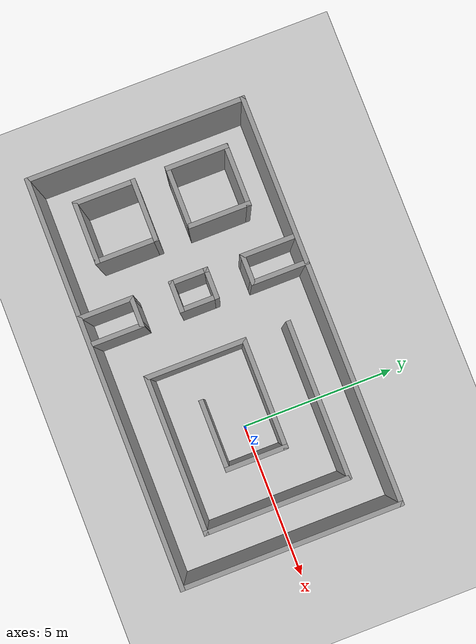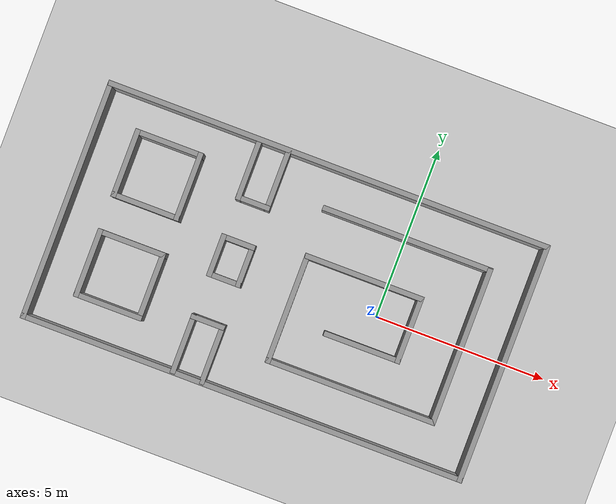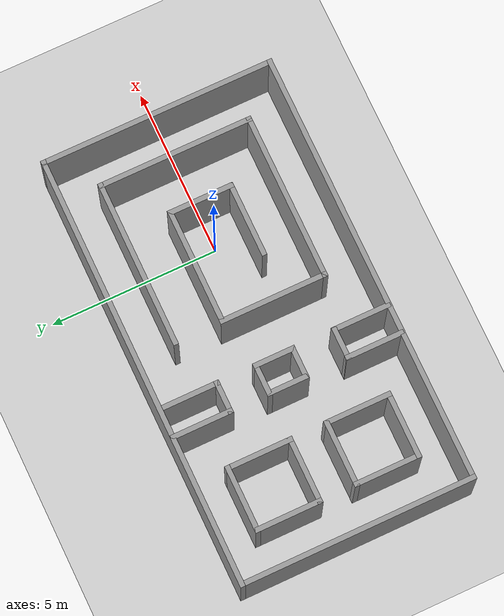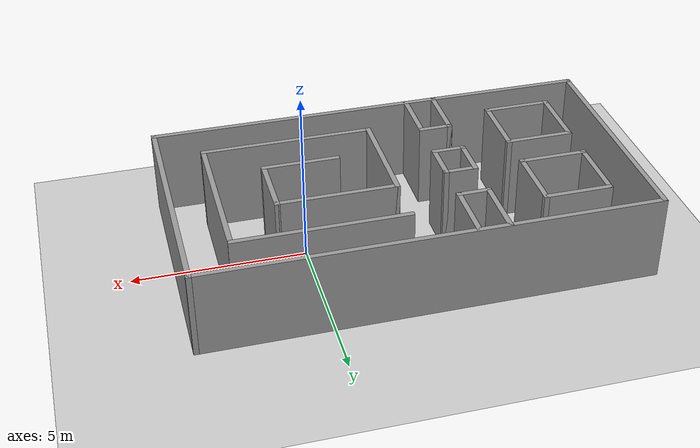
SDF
<sdf version="1.6">
 <world name="default">
  <light name="sun" type="directional">
   <pose>0 0 10 0 -0 0</pose>
   <diffuse>0.8 0.8 0.8 1</diffuse>
   <specular>0.1 0.1 0.1 1</specular>
   <attenuation>
    <range>1000</range>
    <constant>0.9</constant>
    <linear>0.01</linear>
    <quadratic>0.001</quadratic>
   </attenuation>
   <direction>-0.5 0.5 -1</direction>
  </light>
  <model name="ground_plane">
   <static>1</static>
   <link name="link">
    <collision name="collision">
     <geometry><plane><normal>0 0 1</normal><size>100 100</size></plane></geometry>
     <surface><friction><ode><mu>100</mu><mu2>50</mu2></ode></friction></surface>
    </collision>
    <visual name="visual">
     <cast_shadows>0</cast_shadows>
     <geometry><plane><normal>0 0 1</normal><size>100 100</size></plane></geometry>
     <material>
      <script><uri>file://media/materials/scripts/gazebo.material</uri><name>Gazebo/Grey</name></script>
     </material>
    </visual>
   </link>
  </model>
  <gravity>0 0 -9.8</gravity>
  <magnetic_field>6e-06 2.3e-05 -4.2e-05</magnetic_field>
  <atmosphere type="adiabatic"/>
  <physics name="default_physics" default="0" type="ode">
   <max_step_size>0.001</max_step_size>
   <real_time_factor>1</real_time_factor>
   <real_time_update_rate>1000</real_time_update_rate>
  </physics>
  <scene><ambient>0.4 0.4 0.4 1</ambient><background>0.7 0.7 0.7 1</background><shadows>1</shadows></scene>
  <spherical_coordinates>
   <surface_model>EARTH_WGS84</surface_model>
   <latitude_deg>0</latitude_deg>
   <longitude_deg>0</longitude_deg>
   <elevation>0</elevation>
   <heading_deg>0</heading_deg>
  </spherical_coordinates>
  <model name="MazeMap_0">
   <pose>-2.73843 0.027634 0 0 -0 0</pose>
   <link name="Wall_10">
    <collision name="Wall_10_Collision">
     <geometry><box><size>2 0.15 2.5</size></box></geometry>
     <pose>0 0 1.25 0 -0 0</pose>
    </collision>
    <visual name="Wall_10_Visual">
     <pose>0 0 1.25 0 -0 0</pose>
     <geometry><box><size>2 0.15 2.5</size></box></geometry>
     <material>
      <script><uri>file://media/materials/scripts/gazebo.material</uri><name>Gazebo/Grey</name></script>
      <ambient>1 1 1 1</ambient>
     </material>
    </visual>
    <pose>-3.41573 1.51218 0 0 -0 1.5708</pose>
   </link>
   <link name="Wall_11">
    <collision name="Wall_11_Collision">
     <geometry><box><size>2 0.15 2.5</size></box></geometry>
     <pose>0 0 1.25 0 -0 0</pose>
    </collision>
    <visual name="Wall_11_Visual">
     <pose>0 0 1.25 0 -0 0</pose>
     <geometry><box><size>2 0.15 2.5</size></box></geometry>
     <material>
      <script><uri>file://media/materials/scripts/gazebo.material</uri><name>Gazebo/Grey</name></script>
      <ambient>1 1 1 1</ambient>
     </material>
    </visual>
    <pose>-4.34073 2.43718 0 0 -0 3.14159</pose>
   </link>
   <link name="Wall_13">
    <collision name="Wall_13_Collision">
     <geometry><box><size>2 0.15 2.5</size></box></geometry>
     <pose>0 0 1.25 0 -0 0</pose>
    </collision>
    <visual name="Wall_13_Visual">
     <pose>0 0 1.25 0 -0 0</pose>
     <geometry><box><size>2 0.15 2.5</size></box></geometry>
     <material>
      <script><uri>file://media/materials/scripts/gazebo.material</uri><name>Gazebo/Grey</name></script>
      <ambient>1 1 1 1</ambient>
     </material>
    </visual>
    <pose>-5.26573 -1.4254 0 0 0 -1.5708</pose>
   </link>
   <link name="Wall_14">
    <collision name="Wall_14_Collision">
     <geometry><box><size>2 0.15 2.5</size></box></geometry>
     <pose>0 0 1.25 0 -0 0</pose>
    </collision>
    <visual name="Wall_14_Visual">
     <pose>0 0 1.25 0 -0 0</pose>
     <geometry><box><size>2 0.15 2.5</size></box></geometry>
     <material>
      <script><uri>file://media/materials/scripts/gazebo.material</uri><name>Gazebo/Grey</name></script>
      <ambient>1 1 1 1</ambient>
     </material>
    </visual>
    <pose>-4.34073 -2.3504 0 0 -0 0</pose>
   </link>
   <link name="Wall_15">
    <collision name="Wall_15_Collision">
     <geometry><box><size>2 0.15 2.5</size></box></geometry>
     <pose>0 0 1.25 0 -0 0</pose>
    </collision>
    <visual name="Wall_15_Visual">
     <pose>0 0 1.25 0 -0 0</pose>
     <geometry><box><size>2 0.15 2.5</size></box></geometry>
     <material>
      <script><uri>file://media/materials/scripts/gazebo.material</uri><name>Gazebo/Grey</name></script>
      <ambient>1 1 1 1</ambient>
     </material>
    </visual>
    <pose>-3.41573 -1.4254 0 0 -0 1.5708</pose>
   </link>
   <link name="Wall_16">
    <collision name="Wall_16_Collision">
     <geometry><box><size>2 0.15 2.5</size></box></geometry>
     <pose>0 0 1.25 0 -0 0</pose>
    </collision>
    <visual name="Wall_16_Visual">
     <pose>0 0 1.25 0 -0 0</pose>
     <geometry><box><size>2 0.15 2.5</size></box></geometry>
     <material>
      <script><uri>file://media/materials/scripts/gazebo.material</uri><name>Gazebo/Grey</name></script>
      <ambient>1 1 1 1</ambient>
     </material>
    </visual>
    <pose>-4.34073 -0.500403 0 0 -0 3.14159</pose>
   </link>
   <link name="Wall_18">
    <collision name="Wall_18_Collision">
     <geometry><box><size>1.83649 0.15 2.5</size></box></geometry>
     <pose>0 0 1.25 0 -0 0</pose>
    </collision>
    <visual name="Wall_18_Visual">
     <pose>0 0 1.25 0 -0 0</pose>
     <geometry><box><size>1.83649 0.15 2.5</size></box></geometry>
     <material>
      <script><uri>file://media/materials/scripts/gazebo.material</uri><name>Gazebo/Grey</name></script>
      <ambient>1 1 1 1</ambient>
     </material>
    </visual>
    <pose>-2.02744 2.56542 0 0 0 -1.5708</pose>
   </link>
   <link name="Wall_19">
    <collision name="Wall_19_Collision">
     <geometry><box><size>1 0.15 2.5</size></box></geometry>
     <pose>0 0 1.25 0 -0 0</pose>
    </collision>
    <visual name="Wall_19_Visual">
     <pose>0 0 1.25 0 -0 0</pose>
     <geometry><box><size>1 0.15 2.5</size></box></geometry>
     <material>
      <script><uri>file://media/materials/scripts/gazebo.material</uri><name>Gazebo/Grey</name></script>
      <ambient>1 1 1 1</ambient>
     </material>
    </visual>
    <pose>-1.60244 1.72218 0 0 -0 0</pose>
   </link>
   <link name="Wall_20">
    <collision name="Wall_20_Collision">
     <geometry><box><size>1.83649 0.15 2.5</size></box></geometry>
     <pose>0 0 1.25 0 -0 0</pose>
    </collision>
    <visual name="Wall_20_Visual">
     <pose>0 0 1.25 0 -0 0</pose>
     <geometry><box><size>1.83649 0.15 2.5</size></box></geometry>
     <material>
      <script><uri>file://media/materials/scripts/gazebo.material</uri><name>Gazebo/Grey</name></script>
      <ambient>1 1 1 1</ambient>
     </material>
    </visual>
    <pose>-1.17744 2.56542 0 0 -0 1.5708</pose>
   </link>
   <link name="Wall_22">
    <collision name="Wall_22_Collision">
     <geometry><box><size>5 0.15 2.5</size></box></geometry>
     <pose>0 0 1.25 0 -0 0</pose>
    </collision>
    <visual name="Wall_22_Visual">
     <pose>0 0 1.25 0 -0 0</pose>
     <geometry><box><size>5 0.15 2.5</size></box></geometry>
     <material>
      <script><uri>file://media/materials/scripts/gazebo.material</uri><name>Gazebo/Grey</name></script>
      <ambient>1 1 1 1</ambient>
     </material>
    </visual>
    <pose>2.74801 2.27527 0 0 -0 0</pose>
   </link>
   <link name="Wall_23">
    <collision name="Wall_23_Collision">
     <geometry><box><size>4.60678 0.15 2.5</size></box></geometry>
     <pose>0 0 1.25 0 -0 0</pose>
    </collision>
    <visual name="Wall_23_Visual">
     <pose>0 0 1.25 0 -0 0</pose>
     <geometry><box><size>4.60678 0.15 2.5</size></box></geometry>
     <material>
      <script><uri>file://media/materials/scripts/gazebo.material</uri><name>Gazebo/Grey</name></script>
      <ambient>1 1 1 1</ambient>
     </material>
    </visual>
    <pose>5.17301 0.02375 0 0 0 -1.5708</pose>
   </link>
   <link name="Wall_24">
    <collision name="Wall_24_Collision">
     <geometry><box><size>5 0.15 2.5</size></box></geometry>
     <pose>0 0 1.25 0 -0 0</pose>
    </collision>
    <visual name="Wall_24_Visual">
     <pose>0 0 1.25 0 -0 0</pose>
     <geometry><box><size>5 0.15 2.5</size></box></geometry>
     <material>
      <script><uri>file://media/materials/scripts/gazebo.material</uri><name>Gazebo/Grey</name></script>
      <ambient>1 1 1 1</ambient>
     </material>
    </visual>
    <pose>2.74801 -2.20464 0 0 -0 3.14159</pose>
   </link>
   <link name="Wall_25">
    <collision name="Wall_25_Collision">
     <geometry><box><size>3.22243 0.15 2.5</size></box></geometry>
     <pose>0 0 1.25 0 -0 0</pose>
    </collision>
    <visual name="Wall_25_Visual">
     <pose>0 0 1.25 0 -0 0</pose>
     <geometry><box><size>3.22243 0.15 2.5</size></box></geometry>
     <material>
      <script><uri>file://media/materials/scripts/gazebo.material</uri><name>Gazebo/Grey</name></script>
      <ambient>1 1 1 1</ambient>
     </material>
    </visual>
    <pose>0.323006 -0.668424 0 0 -0 1.5708</pose>
   </link>
   <link name="Wall_27">
    <collision name="Wall_27_Collision">
     <geometry><box><size>3.5 0.15 2.5</size></box></geometry>
     <pose>0 0 1.25 0 -0 0</pose>
    </collision>
    <visual name="Wall_27_Visual">
     <pose>0 0 1.25 0 -0 0</pose>
     <geometry><box><size>3.5 0.15 2.5</size></box></geometry>
     <material>
      <script><uri>file://media/materials/scripts/gazebo.material</uri><name>Gazebo/Grey</name></script>
      <ambient>1 1 1 1</ambient>
     </material>
    </visual>
    <pose>1.99801 0.867793 0 0 -0 0</pose>
   </link>
   <link name="Wall_28">
    <collision name="Wall_28_Collision">
     <geometry><box><size>1.97243 0.15 2.5</size></box></geometry>
     <pose>0 0 1.25 0 -0 0</pose>
    </collision>
    <visual name="Wall_28_Visual">
     <pose>0 0 1.25 0 -0 0</pose>
     <geometry><box><size>1.97243 0.15 2.5</size></box></geometry>
     <material>
      <script><uri>file://media/materials/scripts/gazebo.material</uri><name>Gazebo/Grey</name></script>
      <ambient>1 1 1 1</ambient>
     </material>
    </visual>
    <pose>3.67301 -0.043424 0 0 0 -1.5708</pose>
   </link>
   <link name="Wall_29">
    <collision name="Wall_29_Collision">
     <geometry><box><size>2.25 0.15 2.5</size></box></geometry>
     <pose>0 0 1.25 0 -0 0</pose>
    </collision>
    <visual name="Wall_29_Visual">
     <pose>0 0 1.25 0 -0 0</pose>
     <geometry><box><size>2.25 0.15 2.5</size></box></geometry>
     <material>
      <script><uri>file://media/materials/scripts/gazebo.material</uri><name>Gazebo/Grey</name></script>
      <ambient>1 1 1 1</ambient>
     </material>
    </visual>
    <pose>2.62301 -0.95464 0 0 -0 3.14159</pose>
   </link>
   <link name="Wall_3">
    <collision name="Wall_3_Collision">
     <geometry><box><size>7 0.15 2.5</size></box></geometry>
     <pose>0 0 1.25 0 -0 0</pose>
    </collision>
    <visual name="Wall_3_Visual">
     <pose>0 0 1.25 0 -0 0</pose>
     <geometry><box><size>7 0.15 2.5</size></box></geometry>
     <material>
      <script><uri>file://media/materials/scripts/gazebo.material</uri><name>Gazebo/Grey</name></script>
      <ambient>1 1 1 1</ambient>
     </material>
    </visual>
    <pose>-6.425 0 0 0 0 -1.5708</pose>
   </link>
   <link name="Wall_31">
    <collision name="Wall_31_Collision">
     <geometry><box><size>1.75 0.15 2.5</size></box></geometry>
     <pose>0 0 1.25 0 -0 0</pose>
    </collision>
    <visual name="Wall_31_Visual">
     <pose>0 0 1.25 0 -0 0</pose>
     <geometry><box><size>1.75 0.15 2.5</size></box></geometry>
     <material>
      <script><uri>file://media/materials/scripts/gazebo.material</uri><name>Gazebo/Grey</name></script>
      <ambient>1 1 1 1</ambient>
     </material>
    </visual>
    <pose>-2.02744 -2.59173 0 0 -0 1.5708</pose>
   </link>
   <link name="Wall_32">
    <collision name="Wall_32_Collision">
     <geometry><box><size>1 0.15 2.5</size></box></geometry>
     <pose>0 0 1.25 0 -0 0</pose>
    </collision>
    <visual name="Wall_32_Visual">
     <pose>0 0 1.25 0 -0 0</pose>
     <geometry><box><size>1 0.15 2.5</size></box></geometry>
     <material>
      <script><uri>file://media/materials/scripts/gazebo.material</uri><name>Gazebo/Grey</name></script>
      <ambient>1 1 1 1</ambient>
     </material>
    </visual>
    <pose>-1.60244 -1.79173 0 0 -0 0</pose>
   </link>
   <link name="Wall_33">
    <collision name="Wall_33_Collision">
     <geometry><box><size>1.75 0.15 2.5</size></box></geometry>
     <pose>0 0 1.25 0 -0 0</pose>
    </collision>
    <visual name="Wall_33_Visual">
     <pose>0 0 1.25 0 -0 0</pose>
     <geometry><box><size>1.75 0.15 2.5</size></box></geometry>
     <material>
      <script><uri>file://media/materials/scripts/gazebo.material</uri><name>Gazebo/Grey</name></script>
      <ambient>1 1 1 1</ambient>
     </material>
    </visual>
    <pose>-1.17744 -2.59173 0 0 0 -1.5708</pose>
   </link>
   <link name="Wall_35">
    <collision name="Wall_35_Collision">
     <geometry><box><size>1.25 0.15 2.5</size></box></geometry>
     <pose>0 0 1.25 0 -0 0</pose>
    </collision>
    <visual name="Wall_35_Visual">
     <pose>0 0 1.25 0 -0 0</pose>
     <geometry><box><size>1.25 0.15 2.5</size></box></geometry>
     <material>
      <script><uri>file://media/materials/scripts/gazebo.material</uri><name>Gazebo/Grey</name></script>
      <ambient>1 1 1 1</ambient>
     </material>
    </visual>
    <pose>-2.02744 0.013605 0 0 0 -1.5708</pose>
   </link>
   <link name="Wall_36">
    <collision name="Wall_36_Collision">
     <geometry><box><size>1 0.15 2.5</size></box></geometry>
     <pose>0 0 1.25 0 -0 0</pose>
    </collision>
    <visual name="Wall_36_Visual">
     <pose>0 0 1.25 0 -0 0</pose>
     <geometry><box><size>1 0.15 2.5</size></box></geometry>
     <material>
      <script><uri>file://media/materials/scripts/gazebo.material</uri><name>Gazebo/Grey</name></script>
      <ambient>1 1 1 1</ambient>
     </material>
    </visual>
    <pose>-1.60244 -0.536395 0 0 -0 0</pose>
   </link>
   <link name="Wall_37">
    <collision name="Wall_37_Collision">
     <geometry><box><size>1.25 0.15 2.5</size></box></geometry>
     <pose>0 0 1.25 0 -0 0</pose>
    </collision>
    <visual name="Wall_37_Visual">
     <pose>0 0 1.25 0 -0 0</pose>
     <geometry><box><size>1.25 0.15 2.5</size></box></geometry>
     <material>
      <script><uri>file://media/materials/scripts/gazebo.material</uri><name>Gazebo/Grey</name></script>
      <ambient>1 1 1 1</ambient>
     </material>
    </visual>
    <pose>-1.17744 0.013605 0 0 -0 1.5708</pose>
   </link>
   <link name="Wall_38">
    <collision name="Wall_38_Collision">
     <geometry><box><size>1 0.15 2.5</size></box></geometry>
     <pose>0 0 1.25 0 -0 0</pose>
    </collision>
    <visual name="Wall_38_Visual">
     <pose>0 0 1.25 0 -0 0</pose>
     <geometry><box><size>1 0.15 2.5</size></box></geometry>
     <material>
      <script><uri>file://media/materials/scripts/gazebo.material</uri><name>Gazebo/Grey</name></script>
      <ambient>1 1 1 1</ambient>
     </material>
    </visual>
    <pose>-1.60244 0.563605 0 0 -0 3.14159</pose>
   </link>
   <link name="Wall_4">
    <collision name="Wall_4_Collision">
     <geometry><box><size>13 0.15 2.5</size></box></geometry>
     <pose>0 0 1.25 0 -0 0</pose>
    </collision>
    <visual name="Wall_4_Visual">
     <pose>0 0 1.25 0 -0 0</pose>
     <geometry><box><size>13 0.15 2.5</size></box></geometry>
     <material>
      <script><uri>file://media/materials/scripts/gazebo.material</uri><name>Gazebo/Grey</name></script>
      <ambient>1 1 1 1</ambient>
     </material>
    </visual>
    <pose>0 -3.425 0 0 -0 0</pose>
   </link>
   <link name="Wall_5">
    <collision name="Wall_5_Collision">
     <geometry><box><size>7 0.15 2.5</size></box></geometry>
     <pose>0 0 1.25 0 -0 0</pose>
    </collision>
    <visual name="Wall_5_Visual">
     <pose>0 0 1.25 0 -0 0</pose>
     <geometry><box><size>7 0.15 2.5</size></box></geometry>
     <material>
      <script><uri>file://media/materials/scripts/gazebo.material</uri><name>Gazebo/Grey</name></script>
      <ambient>1 1 1 1</ambient>
     </material>
    </visual>
    <pose>6.425 0 0 0 -0 1.5708</pose>
   </link>
   <link name="Wall_6">
    <collision name="Wall_6_Collision">
     <geometry><box><size>13 0.15 2.5</size></box></geometry>
     <pose>0 0 1.25 0 -0 0</pose>
    </collision>
    <visual name="Wall_6_Visual">
     <pose>0 0 1.25 0 -0 0</pose>
     <geometry><box><size>13 0.15 2.5</size></box></geometry>
     <material>
      <script><uri>file://media/materials/scripts/gazebo.material</uri><name>Gazebo/Grey</name></script>
      <ambient>1 1 1 1</ambient>
     </material>
    </visual>
    <pose>0 3.425 0 0 -0 3.14159</pose>
   </link>
   <link name="Wall_8">
    <collision name="Wall_8_Collision">
     <geometry><box><size>2 0.15 2.5</size></box></geometry>
     <pose>0 0 1.25 0 -0 0</pose>
    </collision>
    <visual name="Wall_8_Visual">
     <pose>0 0 1.25 0 -0 0</pose>
     <geometry><box><size>2 0.15 2.5</size></box></geometry>
     <material>
      <script><uri>file://media/materials/scripts/gazebo.material</uri><name>Gazebo/Grey</name></script>
      <ambient>1 1 1 1</ambient>
     </material>
    </visual>
    <pose>-5.26573 1.51218 0 0 0 -1.5708</pose>
   </link>
   <link name="Wall_9">
    <collision name="Wall_9_Collision">
     <geometry><box><size>2 0.15 2.5</size></box></geometry>
     <pose>0 0 1.25 0 -0 0</pose>
    </collision>
    <visual name="Wall_9_Visual">
     <pose>0 0 1.25 0 -0 0</pose>
     <geometry><box><size>2 0.15 2.5</size></box></geometry>
     <material>
      <script><uri>file://media/materials/scripts/gazebo.material</uri><name>Gazebo/Grey</name></script>
      <ambient>1 1 1 1</ambient>
     </material>
    </visual>
    <pose>-4.34073 0.587184 0 0 -0 0</pose>
   </link>
   <static>1</static>
  </model>
 </world>
</sdf>
